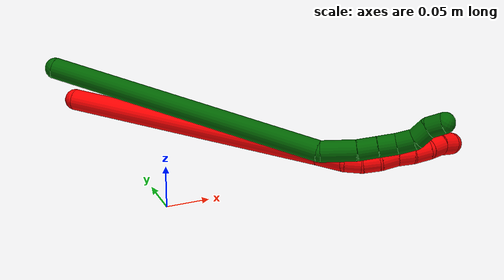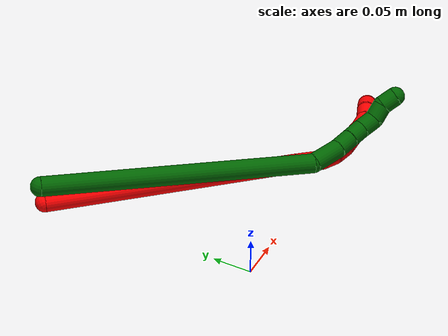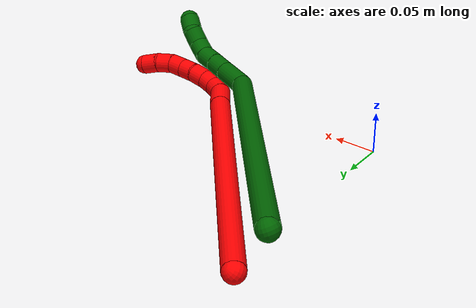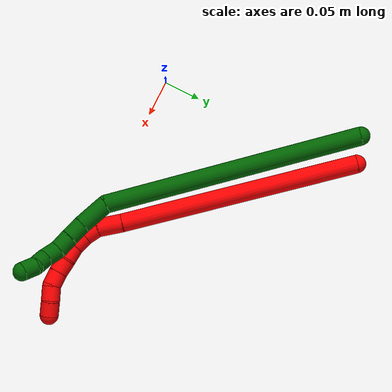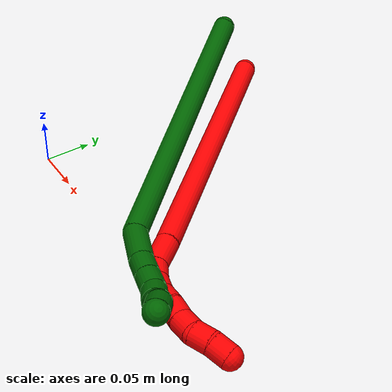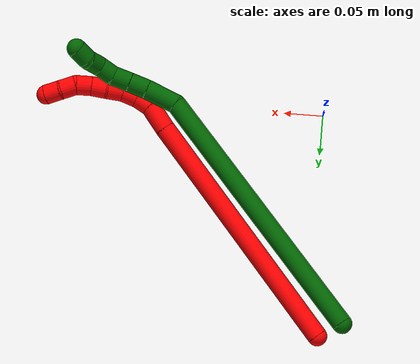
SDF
<sdf version="1.7">
 <world name="default">
  <model name="photoneo_s_sensor">
   <static>1</static>
   <pose>0 0 2 1.57079 1.57079 3.14159</pose>
   <link name="link">
    <inertial><mass>0.1</mass></inertial>
    <sensor name="sensor" type="depth">
     <update_rate>30</update_rate>
     <camera>
      <horizontal_fov>1.22</horizontal_fov>
      <image><width>1920</width><height>1200</height><format>B8G8R8</format></image>
      <clip><near>0.1</near><far>4</far></clip>
      <depth_camera><output>points</output></depth_camera>
     </camera>
     <plugin name="camera_plugin" filename="libgazebo_ros_depth_camera.so">
      <baseline>0.2</baseline>
      <alwaysOn>1</alwaysOn>
      <updateRate>0.0</updateRate>
      <cameraName>camera_ir</cameraName>
      <imageTopicName>/camera/color/image_raw</imageTopicName>
      <cameraInfoTopicName>/camera/color/camera_info</cameraInfoTopicName>
      <depthImageTopicName>/camera/depth/image_raw</depthImageTopicName>
      <depthImageCameraInfoTopicName>/camera/depth/camera_info</depthImageCameraInfoTopicName>
      <pointCloudTopicName>/camera/depth/points</pointCloudTopicName>
      <frameName>fr_optical</frameName>
      <pointCloudCutoff>0.1</pointCloudCutoff>
      <pointCloudCutoffMax>2.0</pointCloudCutoffMax>
      <distortionK1>0</distortionK1>
      <distortionK2>0</distortionK2>
      <distortionK3>0</distortionK3>
      <distortionT1>0</distortionT1>
      <distortionT2>0</distortionT2>
      <CxPrime>0</CxPrime>
      <Cx>0</Cx>
      <Cy>0</Cy>
      <focalLength>0</focalLength>
      <hackBaseline>0</hackBaseline>
     </plugin>
    </sensor>
   </link>
  </model>
  <model name="bin">
   <static>1</static>
   <link name="bottom">
    <collision name="collision-bottom">
     <pose>0 0 -0.01 0 -0 0</pose>
     <geometry><box><size>0.8 0.6 0.02</size></box></geometry>
     <surface>
      <friction><ode><mu>100</mu><mu2>100</mu2></ode></friction>
      <contact><collide_bitmask>65535</collide_bitmask></contact>
     </surface>
    </collision>
   </link>
   <link name="west_wall">
    <collision name="collision-west_wall">
     <pose>-0.41 0 0.1 0 -0 0</pose>
     <geometry><box><size>0.02 0.6 0.2</size></box></geometry>
     <surface>
      <friction><ode><mu>100</mu><mu2>100</mu2></ode></friction>
      <contact><collide_bitmask>65535</collide_bitmask></contact>
     </surface>
    </collision>
   </link>
   <link name="east_wall">
    <collision name="collision-east_wall">
     <pose>0.41 0 0.1 0 -0 0</pose>
     <geometry><box><size>0.02 0.6 0.2</size></box></geometry>
     <surface>
      <friction><ode><mu>100</mu><mu2>100</mu2></ode></friction>
      <contact><collide_bitmask>65535</collide_bitmask></contact>
     </surface>
    </collision>
   </link>
   <link name="south_wall">
    <collision name="collision-south_wall">
     <pose>0 -0.31 0.1 0 -0 0</pose>
     <geometry><box><size>0.8 0.02 0.2</size></box></geometry>
     <surface>
      <friction><ode><mu>100</mu><mu2>100</mu2></ode></friction>
      <contact><collide_bitmask>65535</collide_bitmask></contact>
     </surface>
    </collision>
   </link>
   <link name="north_wall">
    <collision name="collision-north_wall">
     <pose>0 0.31 0.1 0 -0 0</pose>
     <geometry><box><size>0.8 0.02 0.2</size></box></geometry>
     <surface>
      <friction><ode><mu>100</mu><mu2>100</mu2></ode></friction>
      <contact><collide_bitmask>65535</collide_bitmask></contact>
     </surface>
    </collision>
   </link>
  </model>
  <model name="2">
   <static>0</static>
   <link name="2">
    <collision name="collision-cylinder-e_1_1_4">
     <pose>0.088199 -0.131737 -0.037337 1.84697 0.572246 0.74226</pose>
     <geometry><cylinder><radius>0.0125</radius><length>0.325747</length></cylinder></geometry>
     <surface>
      <friction><ode><mu>1.16</mu><mu2>1.16</mu2><slip1>0</slip1><slip2>0</slip2></ode></friction>
      <contact><ode><kp>1e+06</kp><kd>1</kd><max_vel>0</max_vel><min_depth>0.001</min_depth></ode></contact>
     </surface>
    </collision>
    <visual name="visual-cylinder-e_1_1_4">
     <pose>0.088199 -0.131737 -0.037337 1.84697 0.572246 0.74226</pose>
     <geometry><cylinder><radius>0.0125</radius><length>0.325747</length></cylinder></geometry>
     <material><ambient>1 0 0 1</ambient></material>
    </visual>
    <collision name="collision-cylinder-e_2_4_5">
     <pose>0.185001 -0.277449 -0.079038 1.87346 0.531196 0.708617</pose>
     <geometry><cylinder><radius>0.0125</radius><length>0.033962</length></cylinder></geometry>
     <surface>
      <friction><ode><mu>1.16</mu><mu2>1.16</mu2><slip1>0</slip1><slip2>0</slip2></ode></friction>
      <contact><ode><kp>1e+06</kp><kd>1</kd><max_vel>0</max_vel><min_depth>0.001</min_depth></ode></contact>
     </surface>
    </collision>
    <visual name="visual-cylinder-e_2_4_5">
     <pose>0.185001 -0.277449 -0.079038 1.87346 0.531196 0.708617</pose>
     <geometry><cylinder><radius>0.0125</radius><length>0.033962</length></cylinder></geometry>
     <material><ambient>1 0 0 1</ambient></material>
    </visual>
    <collision name="collision-cylinder-e_3_5_6">
     <pose>0.201107 -0.298041 -0.083294 1.55454 0.848144 0.836018</pose>
     <geometry><cylinder><radius>0.0125</radius><length>0.020009</length></cylinder></geometry>
     <surface>
      <friction><ode><mu>1.16</mu><mu2>1.16</mu2><slip1>0</slip1><slip2>0</slip2></ode></friction>
      <contact><ode><kp>1e+06</kp><kd>1</kd><max_vel>0</max_vel><min_depth>0.001</min_depth></ode></contact>
     </surface>
    </collision>
    <visual name="visual-cylinder-e_3_5_6">
     <pose>0.201107 -0.298041 -0.083294 1.55454 0.848144 0.836018</pose>
     <geometry><cylinder><radius>0.0125</radius><length>0.020009</length></cylinder></geometry>
     <material><ambient>1 0 0 1</ambient></material>
    </visual>
    <collision name="collision-cylinder-e_4_6_7">
     <pose>0.216197 -0.310794 -0.080692 1.18477 0.852912 0.593498</pose>
     <geometry><cylinder><radius>0.0125</radius><length>0.020143</length></cylinder></geometry>
     <surface>
      <friction><ode><mu>1.16</mu><mu2>1.16</mu2><slip1>0</slip1><slip2>0</slip2></ode></friction>
      <contact><ode><kp>1e+06</kp><kd>1</kd><max_vel>0</max_vel><min_depth>0.001</min_depth></ode></contact>
     </surface>
    </collision>
    <visual name="visual-cylinder-e_4_6_7">
     <pose>0.216197 -0.310794 -0.080692 1.18477 0.852912 0.593498</pose>
     <geometry><cylinder><radius>0.0125</radius><length>0.020143</length></cylinder></geometry>
     <material><ambient>1 0 0 1</ambient></material>
    </visual>
    <collision name="collision-cylinder-e_5_7_8">
     <pose>0.231517 -0.321587 -0.073797 0.813567 0.879055 0.39973</pose>
     <geometry><cylinder><radius>0.0125</radius><length>0.020086</length></cylinder></geometry>
     <surface>
      <friction><ode><mu>1.16</mu><mu2>1.16</mu2><slip1>0</slip1><slip2>0</slip2></ode></friction>
      <contact><ode><kp>1e+06</kp><kd>1</kd><max_vel>0</max_vel><min_depth>0.001</min_depth></ode></contact>
     </surface>
    </collision>
    <visual name="visual-cylinder-e_5_7_8">
     <pose>0.231517 -0.321587 -0.073797 0.813567 0.879055 0.39973</pose>
     <geometry><cylinder><radius>0.0125</radius><length>0.020086</length></cylinder></geometry>
     <material><ambient>1 0 0 1</ambient></material>
    </visual>
    <collision name="collision-cylinder-e_6_8_9">
     <pose>0.247744 -0.330522 -0.066244 0.93589 1.01159 0.545844</pose>
     <geometry><cylinder><radius>0.0125</radius><length>0.020036</length></cylinder></geometry>
     <surface>
      <friction><ode><mu>1.16</mu><mu2>1.16</mu2><slip1>0</slip1><slip2>0</slip2></ode></friction>
      <contact><ode><kp>1e+06</kp><kd>1</kd><max_vel>0</max_vel><min_depth>0.001</min_depth></ode></contact>
     </surface>
    </collision>
    <visual name="visual-cylinder-e_6_8_9">
     <pose>0.247744 -0.330522 -0.066244 0.93589 1.01159 0.545844</pose>
     <geometry><cylinder><radius>0.0125</radius><length>0.020036</length></cylinder></geometry>
     <material><ambient>1 0 0 1</ambient></material>
    </visual>
    <collision name="collision-cylinder-e_7_9_10">
     <pose>0.264366 -0.338481 -0.058563 0.682361 0.948275 0.360472</pose>
     <geometry><cylinder><radius>0.0125</radius><length>0.020017</length></cylinder></geometry>
     <surface>
      <friction><ode><mu>1.16</mu><mu2>1.16</mu2><slip1>0</slip1><slip2>0</slip2></ode></friction>
      <contact><ode><kp>1e+06</kp><kd>1</kd><max_vel>0</max_vel><min_depth>0.001</min_depth></ode></contact>
     </surface>
    </collision>
    <visual name="visual-cylinder-e_7_9_10">
     <pose>0.264366 -0.338481 -0.058563 0.682361 0.948275 0.360472</pose>
     <geometry><cylinder><radius>0.0125</radius><length>0.020017</length></cylinder></geometry>
     <material><ambient>1 0 0 1</ambient></material>
    </visual>
    <collision name="collision-cylinder-e_8_10_11">
     <pose>0.280776 -0.342061 -0.048426 -0.017856 0.975349 -0.009471</pose>
     <geometry><cylinder><radius>0.0125</radius><length>0.02</length></cylinder></geometry>
     <surface>
      <friction><ode><mu>1.16</mu><mu2>1.16</mu2><slip1>0</slip1><slip2>0</slip2></ode></friction>
      <contact><ode><kp>1e+06</kp><kd>1</kd><max_vel>0</max_vel><min_depth>0.001</min_depth></ode></contact>
     </surface>
    </collision>
    <visual name="visual-cylinder-e_8_10_11">
     <pose>0.280776 -0.342061 -0.048426 -0.017856 0.975349 -0.009471</pose>
     <geometry><cylinder><radius>0.0125</radius><length>0.02</length></cylinder></geometry>
     <material><ambient>1 0 0 1</ambient></material>
    </visual>
    <collision name="collision-cylinder-e_9_11_2">
     <pose>0.298215 -0.341112 -0.038897 -0.213189 1.15789 -0.139656</pose>
     <geometry><cylinder><radius>0.0125</radius><length>0.02</length></cylinder></geometry>
     <surface>
      <friction><ode><mu>1.16</mu><mu2>1.16</mu2><slip1>0</slip1><slip2>0</slip2></ode></friction>
      <contact><ode><kp>1e+06</kp><kd>1</kd><max_vel>0</max_vel><min_depth>0.001</min_depth></ode></contact>
     </surface>
    </collision>
    <visual name="visual-cylinder-e_9_11_2">
     <pose>0.298215 -0.341112 -0.038897 -0.213189 1.15789 -0.139656</pose>
     <geometry><cylinder><radius>0.0125</radius><length>0.02</length></cylinder></geometry>
     <material><ambient>1 0 0 1</ambient></material>
    </visual>
    <collision name="collision-sphere-2">
     <pose>0.307375 -0.340263 -0.034975 0 -0 0</pose>
     <geometry><sphere><radius>0.0125</radius></sphere></geometry>
     <surface>
      <friction><ode><mu>1.16</mu><mu2>1.16</mu2><slip1>0</slip1><slip2>0</slip2></ode></friction>
      <contact><ode><kp>1e+06</kp><kd>1</kd><max_vel>0</max_vel><min_depth>0.001</min_depth></ode></contact>
     </surface>
    </collision>
    <visual name="visual-sphere-2">
     <pose>0.307375 -0.340263 -0.034975 0 -0 0</pose>
     <geometry><sphere><radius>0.0125</radius></sphere></geometry>
     <material><ambient>1 0 0 1</ambient></material>
    </visual>
    <collision name="collision-sphere-11">
     <pose>0.289055 -0.341961 -0.042818 0 -0 0</pose>
     <geometry><sphere><radius>0.0125</radius></sphere></geometry>
     <surface>
      <friction><ode><mu>1.16</mu><mu2>1.16</mu2><slip1>0</slip1><slip2>0</slip2></ode></friction>
      <contact><ode><kp>1e+06</kp><kd>1</kd><max_vel>0</max_vel><min_depth>0.001</min_depth></ode></contact>
     </surface>
    </collision>
    <visual name="visual-sphere-11">
     <pose>0.289055 -0.341961 -0.042818 0 -0 0</pose>
     <geometry><sphere><radius>0.0125</radius></sphere></geometry>
     <material><ambient>1 0 0 1</ambient></material>
    </visual>
    <collision name="collision-sphere-10">
     <pose>0.272497 -0.342161 -0.054034 0 -0 0</pose>
     <geometry><sphere><radius>0.0125</radius></sphere></geometry>
     <surface>
      <friction><ode><mu>1.16</mu><mu2>1.16</mu2><slip1>0</slip1><slip2>0</slip2></ode></friction>
      <contact><ode><kp>1e+06</kp><kd>1</kd><max_vel>0</max_vel><min_depth>0.001</min_depth></ode></contact>
     </surface>
    </collision>
    <visual name="visual-sphere-10">
     <pose>0.272497 -0.342161 -0.054034 0 -0 0</pose>
     <geometry><sphere><radius>0.0125</radius></sphere></geometry>
     <material><ambient>1 0 0 1</ambient></material>
    </visual>
    <collision name="collision-sphere-9">
     <pose>0.256235 -0.334801 -0.063092 0 -0 0</pose>
     <geometry><sphere><radius>0.0125</radius></sphere></geometry>
     <surface>
      <friction><ode><mu>1.16</mu><mu2>1.16</mu2><slip1>0</slip1><slip2>0</slip2></ode></friction>
      <contact><ode><kp>1e+06</kp><kd>1</kd><max_vel>0</max_vel><min_depth>0.001</min_depth></ode></contact>
     </surface>
    </collision>
    <visual name="visual-sphere-9">
     <pose>0.256235 -0.334801 -0.063092 0 -0 0</pose>
     <geometry><sphere><radius>0.0125</radius></sphere></geometry>
     <material><ambient>1 0 0 1</ambient></material>
    </visual>
    <collision name="collision-sphere-4">
     <pose>0.176399 -0.263473 -0.074674 0 -0 0</pose>
     <geometry><sphere><radius>0.0125</radius></sphere></geometry>
     <surface>
      <friction><ode><mu>1.16</mu><mu2>1.16</mu2><slip1>0</slip1><slip2>0</slip2></ode></friction>
      <contact><ode><kp>1e+06</kp><kd>1</kd><max_vel>0</max_vel><min_depth>0.001</min_depth></ode></contact>
     </surface>
    </collision>
    <visual name="visual-sphere-4">
     <pose>0.176399 -0.263473 -0.074674 0 -0 0</pose>
     <geometry><sphere><radius>0.0125</radius></sphere></geometry>
     <material><ambient>1 0 0 1</ambient></material>
    </visual>
    <collision name="collision-sphere-1">
     <geometry><sphere><radius>0.0125</radius></sphere></geometry>
     <surface>
      <friction><ode><mu>1.16</mu><mu2>1.16</mu2><slip1>0</slip1><slip2>0</slip2></ode></friction>
      <contact><ode><kp>1e+06</kp><kd>1</kd><max_vel>0</max_vel><min_depth>0.001</min_depth></ode></contact>
     </surface>
    </collision>
    <visual name="visual-sphere-1">
     <geometry><sphere><radius>0.0125</radius></sphere></geometry>
     <material><ambient>1 0 0 1</ambient></material>
    </visual>
    <collision name="collision-sphere-8">
     <pose>0.239252 -0.326243 -0.069397 0 -0 0</pose>
     <geometry><sphere><radius>0.0125</radius></sphere></geometry>
     <surface>
      <friction><ode><mu>1.16</mu><mu2>1.16</mu2><slip1>0</slip1><slip2>0</slip2></ode></friction>
      <contact><ode><kp>1e+06</kp><kd>1</kd><max_vel>0</max_vel><min_depth>0.001</min_depth></ode></contact>
     </surface>
    </collision>
    <visual name="visual-sphere-8">
     <pose>0.239252 -0.326243 -0.069397 0 -0 0</pose>
     <geometry><sphere><radius>0.0125</radius></sphere></geometry>
     <material><ambient>1 0 0 1</ambient></material>
    </visual>
    <collision name="collision-sphere-5">
     <pose>0.193603 -0.291425 -0.083401 0 -0 0</pose>
     <geometry><sphere><radius>0.0125</radius></sphere></geometry>
     <surface>
      <friction><ode><mu>1.16</mu><mu2>1.16</mu2><slip1>0</slip1><slip2>0</slip2></ode></friction>
      <contact><ode><kp>1e+06</kp><kd>1</kd><max_vel>0</max_vel><min_depth>0.001</min_depth></ode></contact>
     </surface>
    </collision>
    <visual name="visual-sphere-5">
     <pose>0.193603 -0.291425 -0.083401 0 -0 0</pose>
     <geometry><sphere><radius>0.0125</radius></sphere></geometry>
     <material><ambient>1 0 0 1</ambient></material>
    </visual>
    <collision name="collision-sphere-6">
     <pose>0.208611 -0.304656 -0.083186 0 -0 0</pose>
     <geometry><sphere><radius>0.0125</radius></sphere></geometry>
     <surface>
      <friction><ode><mu>1.16</mu><mu2>1.16</mu2><slip1>0</slip1><slip2>0</slip2></ode></friction>
      <contact><ode><kp>1e+06</kp><kd>1</kd><max_vel>0</max_vel><min_depth>0.001</min_depth></ode></contact>
     </surface>
    </collision>
    <visual name="visual-sphere-6">
     <pose>0.208611 -0.304656 -0.083186 0 -0 0</pose>
     <geometry><sphere><radius>0.0125</radius></sphere></geometry>
     <material><ambient>1 0 0 1</ambient></material>
    </visual>
    <collision name="collision-sphere-7">
     <pose>0.223783 -0.316932 -0.078198 0 -0 0</pose>
     <geometry><sphere><radius>0.0125</radius></sphere></geometry>
     <surface>
      <friction><ode><mu>1.16</mu><mu2>1.16</mu2><slip1>0</slip1><slip2>0</slip2></ode></friction>
      <contact><ode><kp>1e+06</kp><kd>1</kd><max_vel>0</max_vel><min_depth>0.001</min_depth></ode></contact>
     </surface>
    </collision>
    <visual name="visual-sphere-7">
     <pose>0.223783 -0.316932 -0.078198 0 -0 0</pose>
     <geometry><sphere><radius>0.0125</radius></sphere></geometry>
     <material><ambient>1 0 0 1</ambient></material>
    </visual>
    <inertial>
     <pose>0.139756 -0.19616 -0.047734 0 -0 0</pose>
     <mass>0.5</mass>
     <inertia>
      <ixx>0.003473</ixx>
      <ixy>0</ixy>
      <ixz>0</ixz>
      <iyy>0.002069</iyy>
      <iyz>0</iyz>
      <izz>0.000767</izz>
     </inertia>
    </inertial>
   </link>
   <pose>-0.015959 0.28051 0.011531 -0.674561 0.541079 0.032598</pose>
  </model>
  <model name="6">
   <static>0</static>
   <link name="6">
    <collision name="collision-cylinder-e_1_1_4">
     <pose>0.090229 -0.140108 -0.052651 1.93026 0.542501 0.763773</pose>
     <geometry><cylinder><radius>0.0125</radius><length>0.349536</length></cylinder></geometry>
     <surface>
      <friction><ode><mu>1.16</mu><mu2>1.16</mu2><slip1>0</slip1><slip2>0</slip2></ode></friction>
      <contact><ode><kp>1e+06</kp><kd>1</kd><max_vel>0</max_vel><min_depth>0.001</min_depth></ode></contact>
     </surface>
    </collision>
    <visual name="visual-cylinder-e_1_1_4">
     <pose>0.090229 -0.140108 -0.052651 1.93026 0.542501 0.763773</pose>
     <geometry><cylinder><radius>0.0125</radius><length>0.349536</length></cylinder></geometry>
     <material><ambient>0 0.392157 0.003922 1</ambient></material>
    </visual>
    <collision name="collision-cylinder-e_2_4_5">
     <pose>0.182271 -0.298092 -0.115978 2.10916 0.086876 0.15287</pose>
     <geometry><cylinder><radius>0.0125</radius><length>0.041798</length></cylinder></geometry>
     <surface>
      <friction><ode><mu>1.16</mu><mu2>1.16</mu2><slip1>0</slip1><slip2>0</slip2></ode></friction>
      <contact><ode><kp>1e+06</kp><kd>1</kd><max_vel>0</max_vel><min_depth>0.001</min_depth></ode></contact>
     </surface>
    </collision>
    <visual name="visual-cylinder-e_2_4_5">
     <pose>0.182271 -0.298092 -0.115978 2.10916 0.086876 0.15287</pose>
     <geometry><cylinder><radius>0.0125</radius><length>0.041798</length></cylinder></geometry>
     <material><ambient>0 0.392157 0.003922 1</ambient></material>
    </visual>
    <collision name="collision-cylinder-e_3_5_6">
     <pose>0.184127 -0.325417 -0.133811 2.21906 0.003576 0.007195</pose>
     <geometry><cylinder><radius>0.0125</radius><length>0.023708</length></cylinder></geometry>
     <surface>
      <friction><ode><mu>1.16</mu><mu2>1.16</mu2><slip1>0</slip1><slip2>0</slip2></ode></friction>
      <contact><ode><kp>1e+06</kp><kd>1</kd><max_vel>0</max_vel><min_depth>0.001</min_depth></ode></contact>
     </surface>
    </collision>
    <visual name="visual-cylinder-e_3_5_6">
     <pose>0.184127 -0.325417 -0.133811 2.21906 0.003576 0.007195</pose>
     <geometry><cylinder><radius>0.0125</radius><length>0.023708</length></cylinder></geometry>
     <material><ambient>0 0.392157 0.003922 1</ambient></material>
    </visual>
    <collision name="collision-cylinder-e_4_6_7">
     <pose>0.184024 -0.343894 -0.147653 2.20815 -0.012972 -0.025746</pose>
     <geometry><cylinder><radius>0.0125</radius><length>0.022471</length></cylinder></geometry>
     <surface>
      <friction><ode><mu>1.16</mu><mu2>1.16</mu2><slip1>0</slip1><slip2>0</slip2></ode></friction>
      <contact><ode><kp>1e+06</kp><kd>1</kd><max_vel>0</max_vel><min_depth>0.001</min_depth></ode></contact>
     </surface>
    </collision>
    <visual name="visual-cylinder-e_4_6_7">
     <pose>0.184024 -0.343894 -0.147653 2.20815 -0.012972 -0.025746</pose>
     <geometry><cylinder><radius>0.0125</radius><length>0.022471</length></cylinder></geometry>
     <material><ambient>0 0.392157 0.003922 1</ambient></material>
    </visual>
    <collision name="collision-cylinder-e_5_7_8">
     <pose>0.186176 -0.360124 -0.162198 2.39993 0.212329 0.535005</pose>
     <geometry><cylinder><radius>0.0125</radius><length>0.02181</length></cylinder></geometry>
     <surface>
      <friction><ode><mu>1.16</mu><mu2>1.16</mu2><slip1>0</slip1><slip2>0</slip2></ode></friction>
      <contact><ode><kp>1e+06</kp><kd>1</kd><max_vel>0</max_vel><min_depth>0.001</min_depth></ode></contact>
     </surface>
    </collision>
    <visual name="visual-cylinder-e_5_7_8">
     <pose>0.186176 -0.360124 -0.162198 2.39993 0.212329 0.535005</pose>
     <geometry><cylinder><radius>0.0125</radius><length>0.02181</length></cylinder></geometry>
     <material><ambient>0 0.392157 0.003922 1</ambient></material>
    </visual>
    <collision name="collision-cylinder-e_6_8_9">
     <pose>0.188981 -0.370343 -0.179766 2.8402 0.049814 0.325224</pose>
     <geometry><cylinder><radius>0.0125</radius><length>0.020357</length></cylinder></geometry>
     <surface>
      <friction><ode><mu>1.16</mu><mu2>1.16</mu2><slip1>0</slip1><slip2>0</slip2></ode></friction>
      <contact><ode><kp>1e+06</kp><kd>1</kd><max_vel>0</max_vel><min_depth>0.001</min_depth></ode></contact>
     </surface>
    </collision>
    <visual name="visual-cylinder-e_6_8_9">
     <pose>0.188981 -0.370343 -0.179766 2.8402 0.049814 0.325224</pose>
     <geometry><cylinder><radius>0.0125</radius><length>0.020357</length></cylinder></geometry>
     <material><ambient>0 0.392157 0.003922 1</ambient></material>
    </visual>
    <collision name="collision-cylinder-e_7_9_2">
     <pose>0.193146 -0.378882 -0.197179 2.5198 0.368366 1.05086</pose>
     <geometry><cylinder><radius>0.0125</radius><length>0.020321</length></cylinder></geometry>
     <surface>
      <friction><ode><mu>1.16</mu><mu2>1.16</mu2><slip1>0</slip1><slip2>0</slip2></ode></friction>
      <contact><ode><kp>1e+06</kp><kd>1</kd><max_vel>0</max_vel><min_depth>0.001</min_depth></ode></contact>
     </surface>
    </collision>
    <visual name="visual-cylinder-e_7_9_2">
     <pose>0.193146 -0.378882 -0.197179 2.5198 0.368366 1.05086</pose>
     <geometry><cylinder><radius>0.0125</radius><length>0.020321</length></cylinder></geometry>
     <material><ambient>0 0.392157 0.003922 1</ambient></material>
    </visual>
    <collision name="collision-sphere-2">
     <pose>0.196805 -0.384403 -0.204883 0 -0 0</pose>
     <geometry><sphere><radius>0.0125</radius></sphere></geometry>
     <surface>
      <friction><ode><mu>1.16</mu><mu2>1.16</mu2><slip1>0</slip1><slip2>0</slip2></ode></friction>
      <contact><ode><kp>1e+06</kp><kd>1</kd><max_vel>0</max_vel><min_depth>0.001</min_depth></ode></contact>
     </surface>
    </collision>
    <visual name="visual-sphere-2">
     <pose>0.196805 -0.384403 -0.204883 0 -0 0</pose>
     <geometry><sphere><radius>0.0125</radius></sphere></geometry>
     <material><ambient>0 0.392157 0.003922 1</ambient></material>
    </visual>
    <collision name="collision-sphere-9">
     <pose>0.189488 -0.37336 -0.189474 0 -0 0</pose>
     <geometry><sphere><radius>0.0125</radius></sphere></geometry>
     <surface>
      <friction><ode><mu>1.16</mu><mu2>1.16</mu2><slip1>0</slip1><slip2>0</slip2></ode></friction>
      <contact><ode><kp>1e+06</kp><kd>1</kd><max_vel>0</max_vel><min_depth>0.001</min_depth></ode></contact>
     </surface>
    </collision>
    <visual name="visual-sphere-9">
     <pose>0.189488 -0.37336 -0.189474 0 -0 0</pose>
     <geometry><sphere><radius>0.0125</radius></sphere></geometry>
     <material><ambient>0 0.392157 0.003922 1</ambient></material>
    </visual>
    <collision name="collision-sphere-4">
     <pose>0.180458 -0.280217 -0.105303 0 -0 0</pose>
     <geometry><sphere><radius>0.0125</radius></sphere></geometry>
     <surface>
      <friction><ode><mu>1.16</mu><mu2>1.16</mu2><slip1>0</slip1><slip2>0</slip2></ode></friction>
      <contact><ode><kp>1e+06</kp><kd>1</kd><max_vel>0</max_vel><min_depth>0.001</min_depth></ode></contact>
     </surface>
    </collision>
    <visual name="visual-sphere-4">
     <pose>0.180458 -0.280217 -0.105303 0 -0 0</pose>
     <geometry><sphere><radius>0.0125</radius></sphere></geometry>
     <material><ambient>0 0.392157 0.003922 1</ambient></material>
    </visual>
    <collision name="collision-sphere-1">
     <geometry><sphere><radius>0.0125</radius></sphere></geometry>
     <surface>
      <friction><ode><mu>1.16</mu><mu2>1.16</mu2><slip1>0</slip1><slip2>0</slip2></ode></friction>
      <contact><ode><kp>1e+06</kp><kd>1</kd><max_vel>0</max_vel><min_depth>0.001</min_depth></ode></contact>
     </surface>
    </collision>
    <visual name="visual-sphere-1">
     <geometry><sphere><radius>0.0125</radius></sphere></geometry>
     <material><ambient>0 0.392157 0.003922 1</ambient></material>
    </visual>
    <collision name="collision-sphere-8">
     <pose>0.188474 -0.367325 -0.170058 0 -0 0</pose>
     <geometry><sphere><radius>0.0125</radius></sphere></geometry>
     <surface>
      <friction><ode><mu>1.16</mu><mu2>1.16</mu2><slip1>0</slip1><slip2>0</slip2></ode></friction>
      <contact><ode><kp>1e+06</kp><kd>1</kd><max_vel>0</max_vel><min_depth>0.001</min_depth></ode></contact>
     </surface>
    </collision>
    <visual name="visual-sphere-8">
     <pose>0.188474 -0.367325 -0.170058 0 -0 0</pose>
     <geometry><sphere><radius>0.0125</radius></sphere></geometry>
     <material><ambient>0 0.392157 0.003922 1</ambient></material>
    </visual>
    <collision name="collision-sphere-5">
     <pose>0.184085 -0.315968 -0.126653 0 -0 0</pose>
     <geometry><sphere><radius>0.0125</radius></sphere></geometry>
     <surface>
      <friction><ode><mu>1.16</mu><mu2>1.16</mu2><slip1>0</slip1><slip2>0</slip2></ode></friction>
      <contact><ode><kp>1e+06</kp><kd>1</kd><max_vel>0</max_vel><min_depth>0.001</min_depth></ode></contact>
     </surface>
    </collision>
    <visual name="visual-sphere-5">
     <pose>0.184085 -0.315968 -0.126653 0 -0 0</pose>
     <geometry><sphere><radius>0.0125</radius></sphere></geometry>
     <material><ambient>0 0.392157 0.003922 1</ambient></material>
    </visual>
    <collision name="collision-sphere-6">
     <pose>0.18417 -0.334866 -0.140968 0 -0 0</pose>
     <geometry><sphere><radius>0.0125</radius></sphere></geometry>
     <surface>
      <friction><ode><mu>1.16</mu><mu2>1.16</mu2><slip1>0</slip1><slip2>0</slip2></ode></friction>
      <contact><ode><kp>1e+06</kp><kd>1</kd><max_vel>0</max_vel><min_depth>0.001</min_depth></ode></contact>
     </surface>
    </collision>
    <visual name="visual-sphere-6">
     <pose>0.18417 -0.334866 -0.140968 0 -0 0</pose>
     <geometry><sphere><radius>0.0125</radius></sphere></geometry>
     <material><ambient>0 0.392157 0.003922 1</ambient></material>
    </visual>
    <collision name="collision-sphere-7">
     <pose>0.183878 -0.352923 -0.154338 0 -0 0</pose>
     <geometry><sphere><radius>0.0125</radius></sphere></geometry>
     <surface>
      <friction><ode><mu>1.16</mu><mu2>1.16</mu2><slip1>0</slip1><slip2>0</slip2></ode></friction>
      <contact><ode><kp>1e+06</kp><kd>1</kd><max_vel>0</max_vel><min_depth>0.001</min_depth></ode></contact>
     </surface>
    </collision>
    <visual name="visual-sphere-7">
     <pose>0.183878 -0.352923 -0.154338 0 -0 0</pose>
     <geometry><sphere><radius>0.0125</radius></sphere></geometry>
     <material><ambient>0 0.392157 0.003922 1</ambient></material>
    </visual>
    <inertial>
     <pose>0.118979 -0.199935 -0.08189 0 -0 0</pose>
     <mass>0.5</mass>
     <inertia>
      <ixx>0.00436</ixx>
      <ixy>0</ixy>
      <ixz>0</ixz>
      <iyy>0.002367</iyy>
      <iyz>0</iyz>
      <izz>0.001014</izz>
     </inertia>
    </inertial>
   </link>
   <pose>-0.043692 0.266664 0.063565 2.62892 -0.075853 -1.864</pose>
  </model>
 </world>
</sdf>
